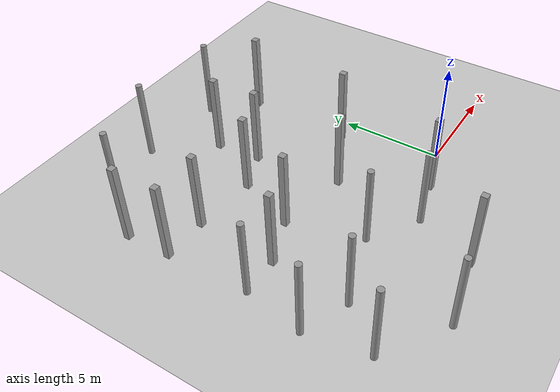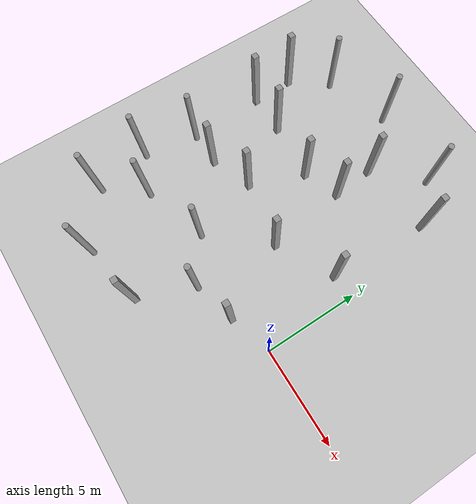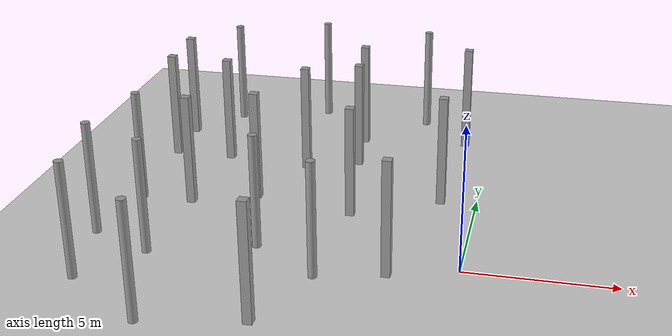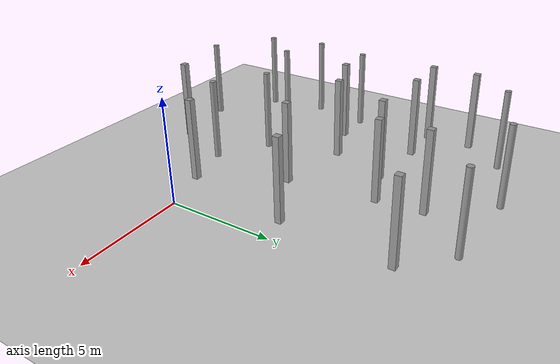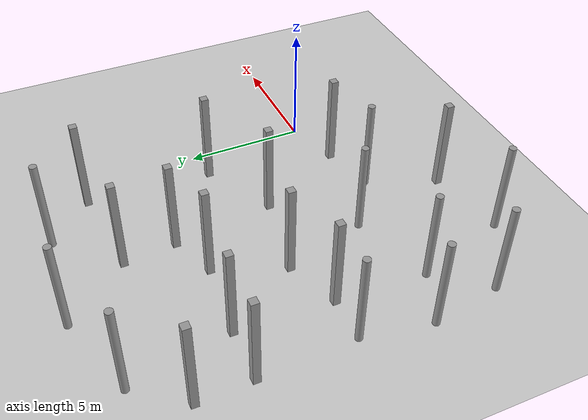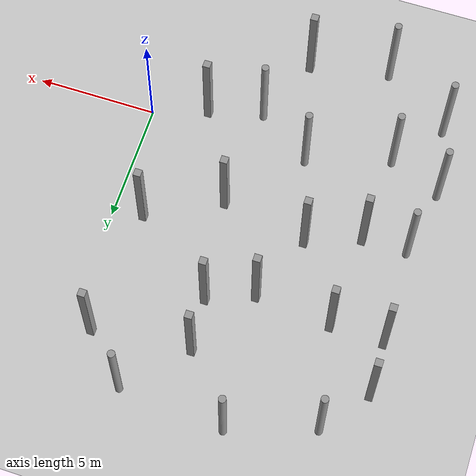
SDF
<sdf version="1.6">
 <world name="default">
  <model name="ground_plane">
   <static>1</static>
   <link name="link">
    <collision name="collision">
     <geometry><plane><normal>0 0 1</normal><size>100 100</size></plane></geometry>
    </collision>
    <visual name="visual">
     <cast_shadows>0</cast_shadows>
     <geometry><plane><normal>0 0 1</normal><size>100 100</size></plane></geometry>
     <material>
      <script><uri>file://media/materials/scripts/gazebo.material</uri><name>Gazebo/Gray</name></script>
     </material>
    </visual>
   </link>
  </model>
  <model name="unit_box">
   <link name="link">
    <inertial>
     <mass>1000</mass>
     <inertia><ixx>166.667</ixx><ixy>0</ixy><ixz>0</ixz><iyy>166.667</iyy><iyz>0</iyz><izz>166.667</izz></inertia>
    </inertial>
    <visual name="visual">
     <geometry><box><size>0.3 0.3 4</size></box></geometry>
     <material>
      <script><name>Gazebo/Grey</name><uri>file://media/materials/scripts/gazebo.material</uri></script>
      <shader type="vertex"><normal_map>__default__</normal_map></shader>
      <ambient>0.3 0.3 0.3 1</ambient>
      <diffuse>0.7 0.7 0.7 1</diffuse>
      <specular>0.01 0.01 0.01 1</specular>
      <emissive>0 0 0 1</emissive>
     </material>
    </visual>
    <collision name="collision">
     <geometry><box><size>0.3 0.3 4</size></box></geometry>
     <surface>
      <friction>
       <ode><mu>1</mu><mu2>1</mu2><fdir1>0 0 0</fdir1><slip1>0</slip1><slip2>0</slip2></ode>
       <torsional>
        <coefficient>1</coefficient>
        <patch_radius>0</patch_radius>
        <surface_radius>0</surface_radius>
        <use_patch_radius>1</use_patch_radius>
        <ode><slip>0</slip></ode>
       </torsional>
      </friction>
      <bounce><restitution_coefficient>0</restitution_coefficient><threshold>1e+06</threshold></bounce>
      <contact>
       <collide_without_contact>0</collide_without_contact>
       <collide_without_contact_bitmask>1</collide_without_contact_bitmask>
       <collide_bitmask>1</collide_bitmask>
       <ode>
        <soft_cfm>0</soft_cfm>
        <soft_erp>0.2</soft_erp>
        <kp>1e+13</kp>
        <kd>1</kd>
        <max_vel>0.01</max_vel>
        <min_depth>0</min_depth>
       </ode>
       <bullet>
        <split_impulse>1</split_impulse>
        <split_impulse_penetration_threshold>-0.01</split_impulse_penetration_threshold>
        <soft_cfm>0</soft_cfm>
        <soft_erp>0.2</soft_erp>
        <kp>1e+13</kp>
        <kd>1</kd>
       </bullet>
      </contact>
     </surface>
    </collision>
   </link>
   <static>0</static>
   <pose>-1.26731 4.71521 2 1e-05 1e-06 -0.00411</pose>
  </model>
  <model name="unit_box_clone">
   <link name="link">
    <inertial>
     <mass>1000</mass>
     <inertia><ixx>166.667</ixx><ixy>0</ixy><ixz>0</ixz><iyy>166.667</iyy><iyz>0</iyz><izz>166.667</izz></inertia>
    </inertial>
    <visual name="visual">
     <geometry><box><size>0.3 0.3 4</size></box></geometry>
     <material>
      <script><name>Gazebo/Grey</name><uri>file://media/materials/scripts/gazebo.material</uri></script>
      <shader type="vertex"><normal_map>__default__</normal_map></shader>
      <ambient>0.3 0.3 0.3 1</ambient>
      <diffuse>0.7 0.7 0.7 1</diffuse>
      <specular>0.01 0.01 0.01 1</specular>
      <emissive>0 0 0 1</emissive>
     </material>
    </visual>
    <collision name="collision">
     <geometry><box><size>0.3 0.3 4</size></box></geometry>
     <surface>
      <friction>
       <ode><mu>1</mu><mu2>1</mu2><fdir1>0 0 0</fdir1><slip1>0</slip1><slip2>0</slip2></ode>
       <torsional>
        <coefficient>1</coefficient>
        <patch_radius>0</patch_radius>
        <surface_radius>0</surface_radius>
        <use_patch_radius>1</use_patch_radius>
        <ode><slip>0</slip></ode>
       </torsional>
      </friction>
      <bounce><restitution_coefficient>0</restitution_coefficient><threshold>1e+06</threshold></bounce>
      <contact>
       <collide_without_contact>0</collide_without_contact>
       <collide_without_contact_bitmask>1</collide_without_contact_bitmask>
       <collide_bitmask>1</collide_bitmask>
       <ode>
        <soft_cfm>0</soft_cfm>
        <soft_erp>0.2</soft_erp>
        <kp>1e+13</kp>
        <kd>1</kd>
        <max_vel>0.01</max_vel>
        <min_depth>0</min_depth>
       </ode>
       <bullet>
        <split_impulse>1</split_impulse>
        <split_impulse_penetration_threshold>-0.01</split_impulse_penetration_threshold>
        <soft_cfm>0</soft_cfm>
        <soft_erp>0.2</soft_erp>
        <kp>1e+13</kp>
        <kd>1</kd>
       </bullet>
      </contact>
     </surface>
    </collision>
   </link>
   <static>0</static>
   <pose>-2.25021 -0.681029 2 1e-06 -4e-06 -0.005446</pose>
  </model>
  <model name="unit_box_clone_3">
   <link name="link">
    <inertial>
     <mass>1000</mass>
     <inertia><ixx>166.667</ixx><ixy>0</ixy><ixz>0</ixz><iyy>166.667</iyy><iyz>0</iyz><izz>166.667</izz></inertia>
    </inertial>
    <visual name="visual">
     <geometry><box><size>0.3 0.3 4</size></box></geometry>
     <material>
      <script><name>Gazebo/Grey</name><uri>file://media/materials/scripts/gazebo.material</uri></script>
      <shader type="vertex"><normal_map>__default__</normal_map></shader>
      <ambient>0.3 0.3 0.3 1</ambient>
      <diffuse>0.7 0.7 0.7 1</diffuse>
      <specular>0.01 0.01 0.01 1</specular>
      <emissive>0 0 0 1</emissive>
     </material>
    </visual>
    <collision name="collision">
     <geometry><box><size>0.3 0.3 4</size></box></geometry>
     <surface>
      <friction>
       <ode><mu>1</mu><mu2>1</mu2><fdir1>0 0 0</fdir1><slip1>0</slip1><slip2>0</slip2></ode>
       <torsional>
        <coefficient>1</coefficient>
        <patch_radius>0</patch_radius>
        <surface_radius>0</surface_radius>
        <use_patch_radius>1</use_patch_radius>
        <ode><slip>0</slip></ode>
       </torsional>
      </friction>
      <bounce><restitution_coefficient>0</restitution_coefficient><threshold>1e+06</threshold></bounce>
      <contact>
       <collide_without_contact>0</collide_without_contact>
       <collide_without_contact_bitmask>1</collide_without_contact_bitmask>
       <collide_bitmask>1</collide_bitmask>
       <ode>
        <soft_cfm>0</soft_cfm>
        <soft_erp>0.2</soft_erp>
        <kp>1e+13</kp>
        <kd>1</kd>
        <max_vel>0.01</max_vel>
        <min_depth>0</min_depth>
       </ode>
       <bullet>
        <split_impulse>1</split_impulse>
        <split_impulse_penetration_threshold>-0.01</split_impulse_penetration_threshold>
        <soft_cfm>0</soft_cfm>
        <soft_erp>0.2</soft_erp>
        <kp>1e+13</kp>
        <kd>1</kd>
       </bullet>
      </contact>
     </surface>
    </collision>
   </link>
   <static>0</static>
   <pose>-9.81581 6.97361 2 5e-06 1e-06 -0.004296</pose>
  </model>
  <model name="unit_box_clone_4">
   <link name="link">
    <inertial>
     <mass>1000</mass>
     <inertia><ixx>166.667</ixx><ixy>0</ixy><ixz>0</ixz><iyy>166.667</iyy><iyz>0</iyz><izz>166.667</izz></inertia>
    </inertial>
    <visual name="visual">
     <geometry><box><size>0.3 0.3 4</size></box></geometry>
     <material>
      <script><name>Gazebo/Grey</name><uri>file://media/materials/scripts/gazebo.material</uri></script>
      <shader type="vertex"><normal_map>__default__</normal_map></shader>
      <ambient>0.3 0.3 0.3 1</ambient>
      <diffuse>0.7 0.7 0.7 1</diffuse>
      <specular>0.01 0.01 0.01 1</specular>
      <emissive>0 0 0 1</emissive>
     </material>
    </visual>
    <collision name="collision">
     <geometry><box><size>0.3 0.3 4</size></box></geometry>
     <surface>
      <friction>
       <ode><mu>1</mu><mu2>1</mu2><fdir1>0 0 0</fdir1><slip1>0</slip1><slip2>0</slip2></ode>
       <torsional>
        <coefficient>1</coefficient>
        <patch_radius>0</patch_radius>
        <surface_radius>0</surface_radius>
        <use_patch_radius>1</use_patch_radius>
        <ode><slip>0</slip></ode>
       </torsional>
      </friction>
      <bounce><restitution_coefficient>0</restitution_coefficient><threshold>1e+06</threshold></bounce>
      <contact>
       <collide_without_contact>0</collide_without_contact>
       <collide_without_contact_bitmask>1</collide_without_contact_bitmask>
       <collide_bitmask>1</collide_bitmask>
       <ode>
        <soft_cfm>0</soft_cfm>
        <soft_erp>0.2</soft_erp>
        <kp>1e+13</kp>
        <kd>1</kd>
        <max_vel>0.01</max_vel>
        <min_depth>0</min_depth>
       </ode>
       <bullet>
        <split_impulse>1</split_impulse>
        <split_impulse_penetration_threshold>-0.01</split_impulse_penetration_threshold>
        <soft_cfm>0</soft_cfm>
        <soft_erp>0.2</soft_erp>
        <kp>1e+13</kp>
        <kd>1</kd>
       </bullet>
      </contact>
     </surface>
    </collision>
   </link>
   <static>0</static>
   <pose>-12.064 9.20919 2 -8e-06 2e-06 -0.002625</pose>
  </model>
  <model name="unit_box_clone_8">
   <link name="link">
    <inertial>
     <mass>1000</mass>
     <inertia><ixx>166.667</ixx><ixy>0</ixy><ixz>0</ixz><iyy>166.667</iyy><iyz>0</iyz><izz>166.667</izz></inertia>
    </inertial>
    <visual name="visual">
     <geometry><box><size>0.3 0.3 4</size></box></geometry>
     <material>
      <script><name>Gazebo/Grey</name><uri>file://media/materials/scripts/gazebo.material</uri></script>
      <shader type="vertex"><normal_map>__default__</normal_map></shader>
      <ambient>0.3 0.3 0.3 1</ambient>
      <diffuse>0.7 0.7 0.7 1</diffuse>
      <specular>0.01 0.01 0.01 1</specular>
      <emissive>0 0 0 1</emissive>
     </material>
    </visual>
    <collision name="collision">
     <geometry><box><size>0.3 0.3 4</size></box></geometry>
     <surface>
      <friction>
       <ode><mu>1</mu><mu2>1</mu2><fdir1>0 0 0</fdir1><slip1>0</slip1><slip2>0</slip2></ode>
       <torsional>
        <coefficient>1</coefficient>
        <patch_radius>0</patch_radius>
        <surface_radius>0</surface_radius>
        <use_patch_radius>1</use_patch_radius>
        <ode><slip>0</slip></ode>
       </torsional>
      </friction>
      <bounce><restitution_coefficient>0</restitution_coefficient><threshold>1e+06</threshold></bounce>
      <contact>
       <collide_without_contact>0</collide_without_contact>
       <collide_without_contact_bitmask>1</collide_without_contact_bitmask>
       <collide_bitmask>1</collide_bitmask>
       <ode>
        <soft_cfm>0</soft_cfm>
        <soft_erp>0.2</soft_erp>
        <kp>1e+13</kp>
        <kd>1</kd>
        <max_vel>0.01</max_vel>
        <min_depth>0</min_depth>
       </ode>
       <bullet>
        <split_impulse>1</split_impulse>
        <split_impulse_penetration_threshold>-0.01</split_impulse_penetration_threshold>
        <soft_cfm>0</soft_cfm>
        <soft_erp>0.2</soft_erp>
        <kp>1e+13</kp>
        <kd>1</kd>
       </bullet>
      </contact>
     </surface>
    </collision>
   </link>
   <static>0</static>
   <pose>-6.68885 6.67572 2 -3e-06 2.3e-05 0.003441</pose>
  </model>
  <model name="unit_box_clone_13">
   <link name="link">
    <inertial>
     <mass>1000</mass>
     <inertia><ixx>166.667</ixx><ixy>0</ixy><ixz>0</ixz><iyy>166.667</iyy><iyz>0</iyz><izz>166.667</izz></inertia>
    </inertial>
    <visual name="visual">
     <geometry><box><size>0.3 0.3 4</size></box></geometry>
     <material>
      <script><name>Gazebo/Grey</name><uri>file://media/materials/scripts/gazebo.material</uri></script>
      <shader type="vertex"><normal_map>__default__</normal_map></shader>
      <ambient>0.3 0.3 0.3 1</ambient>
      <diffuse>0.7 0.7 0.7 1</diffuse>
      <specular>0.01 0.01 0.01 1</specular>
      <emissive>0 0 0 1</emissive>
     </material>
    </visual>
    <collision name="collision">
     <geometry><box><size>0.3 0.3 4</size></box></geometry>
     <surface>
      <friction>
       <ode><mu>1</mu><mu2>1</mu2><fdir1>0 0 0</fdir1><slip1>0</slip1><slip2>0</slip2></ode>
       <torsional>
        <coefficient>1</coefficient>
        <patch_radius>0</patch_radius>
        <surface_radius>0</surface_radius>
        <use_patch_radius>1</use_patch_radius>
        <ode><slip>0</slip></ode>
       </torsional>
      </friction>
      <bounce><restitution_coefficient>0</restitution_coefficient><threshold>1e+06</threshold></bounce>
      <contact>
       <collide_without_contact>0</collide_without_contact>
       <collide_without_contact_bitmask>1</collide_without_contact_bitmask>
       <collide_bitmask>1</collide_bitmask>
       <ode>
        <soft_cfm>0</soft_cfm>
        <soft_erp>0.2</soft_erp>
        <kp>1e+13</kp>
        <kd>1</kd>
        <max_vel>0.01</max_vel>
        <min_depth>0</min_depth>
       </ode>
       <bullet>
        <split_impulse>1</split_impulse>
        <split_impulse_penetration_threshold>-0.01</split_impulse_penetration_threshold>
        <soft_cfm>0</soft_cfm>
        <soft_erp>0.2</soft_erp>
        <kp>1e+13</kp>
        <kd>1</kd>
       </bullet>
      </contact>
     </surface>
    </collision>
   </link>
   <static>0</static>
   <pose>-10.0001 3.00009 2 -7e-06 2e-06 -0.000104</pose>
  </model>
  <model name="unit_box_clone_14">
   <link name="link">
    <inertial>
     <mass>1000</mass>
     <inertia><ixx>166.667</ixx><ixy>0</ixy><ixz>0</ixz><iyy>166.667</iyy><iyz>0</iyz><izz>166.667</izz></inertia>
    </inertial>
    <visual name="visual">
     <geometry><box><size>0.3 0.3 4</size></box></geometry>
     <material>
      <script><name>Gazebo/Grey</name><uri>file://media/materials/scripts/gazebo.material</uri></script>
      <shader type="vertex"><normal_map>__default__</normal_map></shader>
      <ambient>0.3 0.3 0.3 1</ambient>
      <diffuse>0.7 0.7 0.7 1</diffuse>
      <specular>0.01 0.01 0.01 1</specular>
      <emissive>0 0 0 1</emissive>
     </material>
    </visual>
    <collision name="collision">
     <geometry><box><size>0.3 0.3 4</size></box></geometry>
     <surface>
      <friction>
       <ode><mu>1</mu><mu2>1</mu2><fdir1>0 0 0</fdir1><slip1>0</slip1><slip2>0</slip2></ode>
       <torsional>
        <coefficient>1</coefficient>
        <patch_radius>0</patch_radius>
        <surface_radius>0</surface_radius>
        <use_patch_radius>1</use_patch_radius>
        <ode><slip>0</slip></ode>
       </torsional>
      </friction>
      <bounce><restitution_coefficient>0</restitution_coefficient><threshold>1e+06</threshold></bounce>
      <contact>
       <collide_without_contact>0</collide_without_contact>
       <collide_without_contact_bitmask>1</collide_without_contact_bitmask>
       <collide_bitmask>1</collide_bitmask>
       <ode>
        <soft_cfm>0</soft_cfm>
        <soft_erp>0.2</soft_erp>
        <kp>1e+13</kp>
        <kd>1</kd>
        <max_vel>0.01</max_vel>
        <min_depth>0</min_depth>
       </ode>
       <bullet>
        <split_impulse>1</split_impulse>
        <split_impulse_penetration_threshold>-0.01</split_impulse_penetration_threshold>
        <soft_cfm>0</soft_cfm>
        <soft_erp>0.2</soft_erp>
        <kp>1e+13</kp>
        <kd>1</kd>
       </bullet>
      </contact>
     </surface>
    </collision>
   </link>
   <static>0</static>
   <pose>-11.9999 7.00011 2 -0 -1e-06 0.000133</pose>
  </model>
  <model name="unit_box_clone_22">
   <link name="link">
    <inertial>
     <mass>1000</mass>
     <inertia><ixx>166.667</ixx><ixy>0</ixy><ixz>0</ixz><iyy>166.667</iyy><iyz>0</iyz><izz>166.667</izz></inertia>
    </inertial>
    <visual name="visual">
     <geometry><box><size>0.3 0.3 4</size></box></geometry>
     <material>
      <script><name>Gazebo/Grey</name><uri>file://media/materials/scripts/gazebo.material</uri></script>
      <shader type="vertex"><normal_map>__default__</normal_map></shader>
      <ambient>0.3 0.3 0.3 1</ambient>
      <diffuse>0.7 0.7 0.7 1</diffuse>
      <specular>0.01 0.01 0.01 1</specular>
      <emissive>0 0 0 1</emissive>
     </material>
    </visual>
    <collision name="collision">
     <geometry><box><size>0.3 0.3 4</size></box></geometry>
     <surface>
      <friction>
       <ode><mu>1</mu><mu2>1</mu2><fdir1>0 0 0</fdir1><slip1>0</slip1><slip2>0</slip2></ode>
       <torsional>
        <coefficient>1</coefficient>
        <patch_radius>0</patch_radius>
        <surface_radius>0</surface_radius>
        <use_patch_radius>1</use_patch_radius>
        <ode><slip>0</slip></ode>
       </torsional>
      </friction>
      <bounce><restitution_coefficient>0</restitution_coefficient><threshold>1e+06</threshold></bounce>
      <contact>
       <collide_without_contact>0</collide_without_contact>
       <collide_without_contact_bitmask>1</collide_without_contact_bitmask>
       <collide_bitmask>1</collide_bitmask>
       <ode>
        <soft_cfm>0</soft_cfm>
        <soft_erp>0.2</soft_erp>
        <kp>1e+13</kp>
        <kd>1</kd>
        <max_vel>0.01</max_vel>
        <min_depth>0</min_depth>
       </ode>
       <bullet>
        <split_impulse>1</split_impulse>
        <split_impulse_penetration_threshold>-0.01</split_impulse_penetration_threshold>
        <soft_cfm>0</soft_cfm>
        <soft_erp>0.2</soft_erp>
        <kp>1e+13</kp>
        <kd>1</kd>
       </bullet>
      </contact>
     </surface>
    </collision>
   </link>
   <static>0</static>
   <pose>-0.999877 9.99992 2 1.3e-05 -4e-06 -0.007695</pose>
  </model>
  <model name="unit_box_clone_23">
   <link name="link">
    <inertial>
     <mass>1000</mass>
     <inertia><ixx>166.667</ixx><ixy>0</ixy><ixz>0</ixz><iyy>166.667</iyy><iyz>0</iyz><izz>166.667</izz></inertia>
    </inertial>
    <visual name="visual">
     <geometry><box><size>0.3 0.3 4</size></box></geometry>
     <material>
      <script><name>Gazebo/Grey</name><uri>file://media/materials/scripts/gazebo.material</uri></script>
      <shader type="vertex"><normal_map>__default__</normal_map></shader>
      <ambient>0.3 0.3 0.3 1</ambient>
      <diffuse>0.7 0.7 0.7 1</diffuse>
      <specular>0.01 0.01 0.01 1</specular>
      <emissive>0 0 0 1</emissive>
     </material>
    </visual>
    <collision name="collision">
     <geometry><box><size>0.3 0.3 4</size></box></geometry>
     <surface>
      <friction>
       <ode><mu>1</mu><mu2>1</mu2><fdir1>0 0 0</fdir1><slip1>0</slip1><slip2>0</slip2></ode>
       <torsional>
        <coefficient>1</coefficient>
        <patch_radius>0</patch_radius>
        <surface_radius>0</surface_radius>
        <use_patch_radius>1</use_patch_radius>
        <ode><slip>0</slip></ode>
       </torsional>
      </friction>
      <bounce><restitution_coefficient>0</restitution_coefficient><threshold>1e+06</threshold></bounce>
      <contact>
       <collide_without_contact>0</collide_without_contact>
       <collide_without_contact_bitmask>1</collide_without_contact_bitmask>
       <collide_bitmask>1</collide_bitmask>
       <ode>
        <soft_cfm>0</soft_cfm>
        <soft_erp>0.2</soft_erp>
        <kp>1e+13</kp>
        <kd>1</kd>
        <max_vel>0.01</max_vel>
        <min_depth>0</min_depth>
       </ode>
       <bullet>
        <split_impulse>1</split_impulse>
        <split_impulse_penetration_threshold>-0.01</split_impulse_penetration_threshold>
        <soft_cfm>0</soft_cfm>
        <soft_erp>0.2</soft_erp>
        <kp>1e+13</kp>
        <kd>1</kd>
       </bullet>
      </contact>
     </surface>
    </collision>
   </link>
   <static>0</static>
   <pose>-5.00228 9.5919 2 0 -0 0.000109</pose>
  </model>
  <model name="unit_box_clone_24">
   <link name="link">
    <inertial>
     <mass>1000</mass>
     <inertia><ixx>166.667</ixx><ixy>0</ixy><ixz>0</ixz><iyy>166.667</iyy><iyz>0</iyz><izz>166.667</izz></inertia>
    </inertial>
    <visual name="visual">
     <geometry><box><size>0.3 0.3 4</size></box></geometry>
     <material>
      <script><name>Gazebo/Grey</name><uri>file://media/materials/scripts/gazebo.material</uri></script>
      <shader type="vertex"><normal_map>__default__</normal_map></shader>
      <ambient>0.3 0.3 0.3 1</ambient>
      <diffuse>0.7 0.7 0.7 1</diffuse>
      <specular>0.01 0.01 0.01 1</specular>
      <emissive>0 0 0 1</emissive>
     </material>
    </visual>
    <collision name="collision">
     <geometry><box><size>0.3 0.3 4</size></box></geometry>
     <surface>
      <friction>
       <ode><mu>1</mu><mu2>1</mu2><fdir1>0 0 0</fdir1><slip1>0</slip1><slip2>0</slip2></ode>
       <torsional>
        <coefficient>1</coefficient>
        <patch_radius>0</patch_radius>
        <surface_radius>0</surface_radius>
        <use_patch_radius>1</use_patch_radius>
        <ode><slip>0</slip></ode>
       </torsional>
      </friction>
      <bounce><restitution_coefficient>0</restitution_coefficient><threshold>1e+06</threshold></bounce>
      <contact>
       <collide_without_contact>0</collide_without_contact>
       <collide_without_contact_bitmask>1</collide_without_contact_bitmask>
       <collide_bitmask>1</collide_bitmask>
       <ode>
        <soft_cfm>0</soft_cfm>
        <soft_erp>0.2</soft_erp>
        <kp>1e+13</kp>
        <kd>1</kd>
        <max_vel>0.01</max_vel>
        <min_depth>0</min_depth>
       </ode>
       <bullet>
        <split_impulse>1</split_impulse>
        <split_impulse_penetration_threshold>-0.01</split_impulse_penetration_threshold>
        <soft_cfm>0</soft_cfm>
        <soft_erp>0.2</soft_erp>
        <kp>1e+13</kp>
        <kd>1</kd>
       </bullet>
      </contact>
     </surface>
    </collision>
   </link>
   <static>0</static>
   <pose>-4.80941 7.40664 2 1e-06 1e-06 0.002489</pose>
  </model>
  <model name="unit_box_clone_28">
   <link name="link">
    <inertial>
     <mass>1000</mass>
     <inertia><ixx>166.667</ixx><ixy>0</ixy><ixz>0</ixz><iyy>166.667</iyy><iyz>0</iyz><izz>166.667</izz></inertia>
    </inertial>
    <visual name="visual">
     <geometry><box><size>0.3 0.3 4</size></box></geometry>
     <material>
      <script><name>Gazebo/Grey</name><uri>file://media/materials/scripts/gazebo.material</uri></script>
      <shader type="vertex"><normal_map>__default__</normal_map></shader>
      <ambient>0.3 0.3 0.3 1</ambient>
      <diffuse>0.7 0.7 0.7 1</diffuse>
      <specular>0.01 0.01 0.01 1</specular>
      <emissive>0 0 0 1</emissive>
     </material>
    </visual>
    <collision name="collision">
     <geometry><box><size>0.3 0.3 4</size></box></geometry>
     <surface>
      <friction>
       <ode><mu>1</mu><mu2>1</mu2><fdir1>0 0 0</fdir1><slip1>0</slip1><slip2>0</slip2></ode>
       <torsional>
        <coefficient>1</coefficient>
        <patch_radius>0</patch_radius>
        <surface_radius>0</surface_radius>
        <use_patch_radius>1</use_patch_radius>
        <ode><slip>0</slip></ode>
       </torsional>
      </friction>
      <bounce><restitution_coefficient>0</restitution_coefficient><threshold>1e+06</threshold></bounce>
      <contact>
       <collide_without_contact>0</collide_without_contact>
       <collide_without_contact_bitmask>1</collide_without_contact_bitmask>
       <collide_bitmask>1</collide_bitmask>
       <ode>
        <soft_cfm>0</soft_cfm>
        <soft_erp>0.2</soft_erp>
        <kp>1e+13</kp>
        <kd>1</kd>
        <max_vel>0.01</max_vel>
        <min_depth>0</min_depth>
       </ode>
       <bullet>
        <split_impulse>1</split_impulse>
        <split_impulse_penetration_threshold>-0.01</split_impulse_penetration_threshold>
        <soft_cfm>0</soft_cfm>
        <soft_erp>0.2</soft_erp>
        <kp>1e+13</kp>
        <kd>1</kd>
       </bullet>
      </contact>
     </surface>
    </collision>
   </link>
   <static>0</static>
   <pose>-7.80118 3.82479 2 1e-06 -1e-06 -0.004584</pose>
  </model>
  <model name="unit_cylinder_clone_1_clone_1">
   <link name="link">
    <inertial>
     <mass>1000</mass>
     <inertia><ixx>145.833</ixx><ixy>0</ixy><ixz>0</ixz><iyy>145.833</iyy><iyz>0</iyz><izz>125</izz></inertia>
    </inertial>
    <visual name="visual">
     <geometry><cylinder><radius>0.15</radius><length>4</length></cylinder></geometry>
     <material>
      <script><name>Gazebo/Grey</name><uri>file://media/materials/scripts/gazebo.material</uri></script>
      <shader type="vertex"><normal_map>__default__</normal_map></shader>
      <ambient>0.3 0.3 0.3 1</ambient>
      <diffuse>0.7 0.7 0.7 1</diffuse>
      <specular>0.01 0.01 0.01 1</specular>
      <emissive>0 0 0 1</emissive>
     </material>
    </visual>
    <collision name="collision">
     <geometry><cylinder><radius>0.15</radius><length>4</length></cylinder></geometry>
     <surface>
      <friction>
       <ode><mu>1</mu><mu2>1</mu2><fdir1>0 0 0</fdir1><slip1>0</slip1><slip2>0</slip2></ode>
       <torsional>
        <coefficient>1</coefficient>
        <patch_radius>0</patch_radius>
        <surface_radius>0</surface_radius>
        <use_patch_radius>1</use_patch_radius>
        <ode><slip>0</slip></ode>
       </torsional>
      </friction>
      <bounce><restitution_coefficient>0</restitution_coefficient><threshold>1e+06</threshold></bounce>
      <contact>
       <collide_without_contact>0</collide_without_contact>
       <collide_without_contact_bitmask>1</collide_without_contact_bitmask>
       <collide_bitmask>1</collide_bitmask>
       <ode>
        <soft_cfm>0</soft_cfm>
        <soft_erp>0.2</soft_erp>
        <kp>1e+13</kp>
        <kd>1</kd>
        <max_vel>0.01</max_vel>
        <min_depth>0</min_depth>
       </ode>
       <bullet>
        <split_impulse>1</split_impulse>
        <split_impulse_penetration_threshold>-0.01</split_impulse_penetration_threshold>
        <soft_cfm>0</soft_cfm>
        <soft_erp>0.2</soft_erp>
        <kp>1e+13</kp>
        <kd>1</kd>
       </bullet>
      </contact>
     </surface>
    </collision>
   </link>
   <static>0</static>
   <pose>-11.8335 -2.8104 1.99995 -0.000271 -2.9e-05 -0.902102</pose>
  </model>
  <model name="unit_cylinder_clone_1_clone_4">
   <link name="link">
    <inertial>
     <mass>1000</mass>
     <inertia><ixx>145.833</ixx><ixy>0</ixy><ixz>0</ixz><iyy>145.833</iyy><iyz>0</iyz><izz>125</izz></inertia>
    </inertial>
    <visual name="visual">
     <geometry><cylinder><radius>0.15</radius><length>4</length></cylinder></geometry>
     <material>
      <script><name>Gazebo/Grey</name><uri>file://media/materials/scripts/gazebo.material</uri></script>
      <shader type="vertex"><normal_map>__default__</normal_map></shader>
      <ambient>0.3 0.3 0.3 1</ambient>
      <diffuse>0.7 0.7 0.7 1</diffuse>
      <specular>0.01 0.01 0.01 1</specular>
      <emissive>0 0 0 1</emissive>
     </material>
    </visual>
    <collision name="collision">
     <geometry><cylinder><radius>0.15</radius><length>4</length></cylinder></geometry>
     <surface>
      <friction>
       <ode><mu>1</mu><mu2>1</mu2><fdir1>0 0 0</fdir1><slip1>0</slip1><slip2>0</slip2></ode>
       <torsional>
        <coefficient>1</coefficient>
        <patch_radius>0</patch_radius>
        <surface_radius>0</surface_radius>
        <use_patch_radius>1</use_patch_radius>
        <ode><slip>0</slip></ode>
       </torsional>
      </friction>
      <bounce><restitution_coefficient>0</restitution_coefficient><threshold>1e+06</threshold></bounce>
      <contact>
       <collide_without_contact>0</collide_without_contact>
       <collide_without_contact_bitmask>1</collide_without_contact_bitmask>
       <collide_bitmask>1</collide_bitmask>
       <ode>
        <soft_cfm>0</soft_cfm>
        <soft_erp>0.2</soft_erp>
        <kp>1e+13</kp>
        <kd>1</kd>
        <max_vel>0.01</max_vel>
        <min_depth>0</min_depth>
       </ode>
       <bullet>
        <split_impulse>1</split_impulse>
        <split_impulse_penetration_threshold>-0.01</split_impulse_penetration_threshold>
        <soft_cfm>0</soft_cfm>
        <soft_erp>0.2</soft_erp>
        <kp>1e+13</kp>
        <kd>1</kd>
       </bullet>
      </contact>
     </surface>
    </collision>
   </link>
   <static>0</static>
   <pose>-8.98905 -4.76141 1.99995 -0.000271 -3e-05 -0.904065</pose>
  </model>
  <model name="unit_cylinder_clone_1_clone_11">
   <link name="link">
    <inertial>
     <mass>1000</mass>
     <inertia><ixx>145.833</ixx><ixy>0</ixy><ixz>0</ixz><iyy>145.833</iyy><iyz>0</iyz><izz>125</izz></inertia>
    </inertial>
    <visual name="visual">
     <geometry><cylinder><radius>0.15</radius><length>4</length></cylinder></geometry>
     <material>
      <script><name>Gazebo/Grey</name><uri>file://media/materials/scripts/gazebo.material</uri></script>
      <shader type="vertex"><normal_map>__default__</normal_map></shader>
      <ambient>0.3 0.3 0.3 1</ambient>
      <diffuse>0.7 0.7 0.7 1</diffuse>
      <specular>0.01 0.01 0.01 1</specular>
      <emissive>0 0 0 1</emissive>
     </material>
    </visual>
    <collision name="collision">
     <geometry><cylinder><radius>0.15</radius><length>4</length></cylinder></geometry>
     <surface>
      <friction>
       <ode><mu>1</mu><mu2>1</mu2><fdir1>0 0 0</fdir1><slip1>0</slip1><slip2>0</slip2></ode>
       <torsional>
        <coefficient>1</coefficient>
        <patch_radius>0</patch_radius>
        <surface_radius>0</surface_radius>
        <use_patch_radius>1</use_patch_radius>
        <ode><slip>0</slip></ode>
       </torsional>
      </friction>
      <bounce><restitution_coefficient>0</restitution_coefficient><threshold>1e+06</threshold></bounce>
      <contact>
       <collide_without_contact>0</collide_without_contact>
       <collide_without_contact_bitmask>1</collide_without_contact_bitmask>
       <collide_bitmask>1</collide_bitmask>
       <ode>
        <soft_cfm>0</soft_cfm>
        <soft_erp>0.2</soft_erp>
        <kp>1e+13</kp>
        <kd>1</kd>
        <max_vel>0.01</max_vel>
        <min_depth>0</min_depth>
       </ode>
       <bullet>
        <split_impulse>1</split_impulse>
        <split_impulse_penetration_threshold>-0.01</split_impulse_penetration_threshold>
        <soft_cfm>0</soft_cfm>
        <soft_erp>0.2</soft_erp>
        <kp>1e+13</kp>
        <kd>1</kd>
       </bullet>
      </contact>
     </surface>
    </collision>
   </link>
   <static>0</static>
   <pose>-4.49211 -1.24162 1.99995 -0.000271 -2.8e-05 -0.896025</pose>
  </model>
  <model name="unit_cylinder_clone_1_clone_12">
   <link name="link">
    <inertial>
     <mass>1000</mass>
     <inertia><ixx>145.833</ixx><ixy>0</ixy><ixz>0</ixz><iyy>145.833</iyy><iyz>0</iyz><izz>125</izz></inertia>
    </inertial>
    <visual name="visual">
     <geometry><cylinder><radius>0.15</radius><length>4</length></cylinder></geometry>
     <material>
      <script><name>Gazebo/Grey</name><uri>file://media/materials/scripts/gazebo.material</uri></script>
      <shader type="vertex"><normal_map>__default__</normal_map></shader>
      <ambient>0.3 0.3 0.3 1</ambient>
      <diffuse>0.7 0.7 0.7 1</diffuse>
      <specular>0.01 0.01 0.01 1</specular>
      <emissive>0 0 0 1</emissive>
     </material>
    </visual>
    <collision name="collision">
     <geometry><cylinder><radius>0.15</radius><length>4</length></cylinder></geometry>
     <surface>
      <friction>
       <ode><mu>1</mu><mu2>1</mu2><fdir1>0 0 0</fdir1><slip1>0</slip1><slip2>0</slip2></ode>
       <torsional>
        <coefficient>1</coefficient>
        <patch_radius>0</patch_radius>
        <surface_radius>0</surface_radius>
        <use_patch_radius>1</use_patch_radius>
        <ode><slip>0</slip></ode>
       </torsional>
      </friction>
      <bounce><restitution_coefficient>0</restitution_coefficient><threshold>1e+06</threshold></bounce>
      <contact>
       <collide_without_contact>0</collide_without_contact>
       <collide_without_contact_bitmask>1</collide_without_contact_bitmask>
       <collide_bitmask>1</collide_bitmask>
       <ode>
        <soft_cfm>0</soft_cfm>
        <soft_erp>0.2</soft_erp>
        <kp>1e+13</kp>
        <kd>1</kd>
        <max_vel>0.01</max_vel>
        <min_depth>0</min_depth>
       </ode>
       <bullet>
        <split_impulse>1</split_impulse>
        <split_impulse_penetration_threshold>-0.01</split_impulse_penetration_threshold>
        <soft_cfm>0</soft_cfm>
        <soft_erp>0.2</soft_erp>
        <kp>1e+13</kp>
        <kd>1</kd>
       </bullet>
      </contact>
     </surface>
    </collision>
   </link>
   <static>0</static>
   <pose>-6.76449 0.284279 1.99995 -0.000271 -2.9e-05 -0.90102</pose>
  </model>
  <model name="unit_cylinder_clone_1_clone_14">
   <link name="link">
    <inertial>
     <mass>1000</mass>
     <inertia><ixx>145.833</ixx><ixy>0</ixy><ixz>0</ixz><iyy>145.833</iyy><iyz>0</iyz><izz>125</izz></inertia>
    </inertial>
    <visual name="visual">
     <geometry><cylinder><radius>0.15</radius><length>4</length></cylinder></geometry>
     <material>
      <script><name>Gazebo/Grey</name><uri>file://media/materials/scripts/gazebo.material</uri></script>
      <shader type="vertex"><normal_map>__default__</normal_map></shader>
      <ambient>0.3 0.3 0.3 1</ambient>
      <diffuse>0.7 0.7 0.7 1</diffuse>
      <specular>0.01 0.01 0.01 1</specular>
      <emissive>0 0 0 1</emissive>
     </material>
    </visual>
    <collision name="collision">
     <geometry><cylinder><radius>0.15</radius><length>4</length></cylinder></geometry>
     <surface>
      <friction>
       <ode><mu>1</mu><mu2>1</mu2><fdir1>0 0 0</fdir1><slip1>0</slip1><slip2>0</slip2></ode>
       <torsional>
        <coefficient>1</coefficient>
        <patch_radius>0</patch_radius>
        <surface_radius>0</surface_radius>
        <use_patch_radius>1</use_patch_radius>
        <ode><slip>0</slip></ode>
       </torsional>
      </friction>
      <bounce><restitution_coefficient>0</restitution_coefficient><threshold>1e+06</threshold></bounce>
      <contact>
       <collide_without_contact>0</collide_without_contact>
       <collide_without_contact_bitmask>1</collide_without_contact_bitmask>
       <collide_bitmask>1</collide_bitmask>
       <ode>
        <soft_cfm>0</soft_cfm>
        <soft_erp>0.2</soft_erp>
        <kp>1e+13</kp>
        <kd>1</kd>
        <max_vel>0.01</max_vel>
        <min_depth>0</min_depth>
       </ode>
       <bullet>
        <split_impulse>1</split_impulse>
        <split_impulse_penetration_threshold>-0.01</split_impulse_penetration_threshold>
        <soft_cfm>0</soft_cfm>
        <soft_erp>0.2</soft_erp>
        <kp>1e+13</kp>
        <kd>1</kd>
       </bullet>
      </contact>
     </surface>
    </collision>
   </link>
   <static>0</static>
   <pose>-10.1968 -0.793832 1.99995 -0.000271 -3e-05 -0.904055</pose>
  </model>
  <model name="unit_cylinder_clone_1_clone_7_clone_0">
   <link name="link">
    <inertial>
     <mass>1000</mass>
     <inertia><ixx>145.833</ixx><ixy>0</ixy><ixz>0</ixz><iyy>145.833</iyy><iyz>0</iyz><izz>125</izz></inertia>
    </inertial>
    <visual name="visual">
     <geometry><cylinder><radius>0.15</radius><length>4</length></cylinder></geometry>
     <material>
      <script><name>Gazebo/Grey</name><uri>file://media/materials/scripts/gazebo.material</uri></script>
      <shader type="vertex"><normal_map>__default__</normal_map></shader>
      <ambient>0.3 0.3 0.3 1</ambient>
      <diffuse>0.7 0.7 0.7 1</diffuse>
      <specular>0.01 0.01 0.01 1</specular>
      <emissive>0 0 0 1</emissive>
     </material>
    </visual>
    <collision name="collision">
     <geometry><cylinder><radius>0.15</radius><length>4</length></cylinder></geometry>
     <surface>
      <friction>
       <ode><mu>1</mu><mu2>1</mu2><fdir1>0 0 0</fdir1><slip1>0</slip1><slip2>0</slip2></ode>
       <torsional>
        <coefficient>1</coefficient>
        <patch_radius>0</patch_radius>
        <surface_radius>0</surface_radius>
        <use_patch_radius>1</use_patch_radius>
        <ode><slip>0</slip></ode>
       </torsional>
      </friction>
      <bounce><restitution_coefficient>0</restitution_coefficient><threshold>1e+06</threshold></bounce>
      <contact>
       <collide_without_contact>0</collide_without_contact>
       <collide_without_contact_bitmask>1</collide_without_contact_bitmask>
       <collide_bitmask>1</collide_bitmask>
       <ode>
        <soft_cfm>0</soft_cfm>
        <soft_erp>0.2</soft_erp>
        <kp>1e+13</kp>
        <kd>1</kd>
        <max_vel>0.01</max_vel>
        <min_depth>0</min_depth>
       </ode>
       <bullet>
        <split_impulse>1</split_impulse>
        <split_impulse_penetration_threshold>-0.01</split_impulse_penetration_threshold>
        <soft_cfm>0</soft_cfm>
        <soft_erp>0.2</soft_erp>
        <kp>1e+13</kp>
        <kd>1</kd>
       </bullet>
      </contact>
     </surface>
    </collision>
   </link>
   <static>0</static>
   <pose>-7.15575 12.2443 1.99995 -0.000271 -2.9e-05 -0.900883</pose>
  </model>
  <model name="unit_cylinder_clone_1_clone_7_clone_2">
   <link name="link">
    <inertial>
     <mass>1000</mass>
     <inertia><ixx>145.833</ixx><ixy>0</ixy><ixz>0</ixz><iyy>145.833</iyy><iyz>0</iyz><izz>125</izz></inertia>
    </inertial>
    <visual name="visual">
     <geometry><cylinder><radius>0.15</radius><length>4</length></cylinder></geometry>
     <material>
      <script><name>Gazebo/Grey</name><uri>file://media/materials/scripts/gazebo.material</uri></script>
      <shader type="vertex"><normal_map>__default__</normal_map></shader>
      <ambient>0.3 0.3 0.3 1</ambient>
      <diffuse>0.7 0.7 0.7 1</diffuse>
      <specular>0.01 0.01 0.01 1</specular>
      <emissive>0 0 0 1</emissive>
     </material>
    </visual>
    <collision name="collision">
     <geometry><cylinder><radius>0.15</radius><length>4</length></cylinder></geometry>
     <surface>
      <friction>
       <ode><mu>1</mu><mu2>1</mu2><fdir1>0 0 0</fdir1><slip1>0</slip1><slip2>0</slip2></ode>
       <torsional>
        <coefficient>1</coefficient>
        <patch_radius>0</patch_radius>
        <surface_radius>0</surface_radius>
        <use_patch_radius>1</use_patch_radius>
        <ode><slip>0</slip></ode>
       </torsional>
      </friction>
      <bounce><restitution_coefficient>0</restitution_coefficient><threshold>1e+06</threshold></bounce>
      <contact>
       <collide_without_contact>0</collide_without_contact>
       <collide_without_contact_bitmask>1</collide_without_contact_bitmask>
       <collide_bitmask>1</collide_bitmask>
       <ode>
        <soft_cfm>0</soft_cfm>
        <soft_erp>0.2</soft_erp>
        <kp>1e+13</kp>
        <kd>1</kd>
        <max_vel>0.01</max_vel>
        <min_depth>0</min_depth>
       </ode>
       <bullet>
        <split_impulse>1</split_impulse>
        <split_impulse_penetration_threshold>-0.01</split_impulse_penetration_threshold>
        <soft_cfm>0</soft_cfm>
        <soft_erp>0.2</soft_erp>
        <kp>1e+13</kp>
        <kd>1</kd>
       </bullet>
      </contact>
     </surface>
    </collision>
   </link>
   <static>0</static>
   <pose>-2.83448 11.8814 1.99995 -0.000271 -2.9e-05 -0.900883</pose>
  </model>
  <model name="unit_cylinder_clone_1_clone_7_clone_3">
   <link name="link">
    <inertial>
     <mass>1000</mass>
     <inertia><ixx>145.833</ixx><ixy>0</ixy><ixz>0</ixz><iyy>145.833</iyy><iyz>0</iyz><izz>125</izz></inertia>
    </inertial>
    <visual name="visual">
     <geometry><cylinder><radius>0.15</radius><length>4</length></cylinder></geometry>
     <material>
      <script><name>Gazebo/Grey</name><uri>file://media/materials/scripts/gazebo.material</uri></script>
      <shader type="vertex"><normal_map>__default__</normal_map></shader>
      <ambient>0.3 0.3 0.3 1</ambient>
      <diffuse>0.7 0.7 0.7 1</diffuse>
      <specular>0.01 0.01 0.01 1</specular>
      <emissive>0 0 0 1</emissive>
     </material>
    </visual>
    <collision name="collision">
     <geometry><cylinder><radius>0.15</radius><length>4</length></cylinder></geometry>
     <surface>
      <friction>
       <ode><mu>1</mu><mu2>1</mu2><fdir1>0 0 0</fdir1><slip1>0</slip1><slip2>0</slip2></ode>
       <torsional>
        <coefficient>1</coefficient>
        <patch_radius>0</patch_radius>
        <surface_radius>0</surface_radius>
        <use_patch_radius>1</use_patch_radius>
        <ode><slip>0</slip></ode>
       </torsional>
      </friction>
      <bounce><restitution_coefficient>0</restitution_coefficient><threshold>1e+06</threshold></bounce>
      <contact>
       <collide_without_contact>0</collide_without_contact>
       <collide_without_contact_bitmask>1</collide_without_contact_bitmask>
       <collide_bitmask>1</collide_bitmask>
       <ode>
        <soft_cfm>0</soft_cfm>
        <soft_erp>0.2</soft_erp>
        <kp>1e+13</kp>
        <kd>1</kd>
        <max_vel>0.01</max_vel>
        <min_depth>0</min_depth>
       </ode>
       <bullet>
        <split_impulse>1</split_impulse>
        <split_impulse_penetration_threshold>-0.01</split_impulse_penetration_threshold>
        <soft_cfm>0</soft_cfm>
        <soft_erp>0.2</soft_erp>
        <kp>1e+13</kp>
        <kd>1</kd>
       </bullet>
      </contact>
     </surface>
    </collision>
   </link>
   <static>0</static>
   <pose>-12.3553 0.135707 1.99995 -0.000271 -2.9e-05 -0.898437</pose>
  </model>
  <model name="unit_cylinder_clone_1_clone_7_clone_5">
   <link name="link">
    <inertial>
     <mass>1000</mass>
     <inertia><ixx>145.833</ixx><ixy>0</ixy><ixz>0</ixz><iyy>145.833</iyy><iyz>0</iyz><izz>125</izz></inertia>
    </inertial>
    <visual name="visual">
     <geometry><cylinder><radius>0.15</radius><length>4</length></cylinder></geometry>
     <material>
      <script><name>Gazebo/Grey</name><uri>file://media/materials/scripts/gazebo.material</uri></script>
      <shader type="vertex"><normal_map>__default__</normal_map></shader>
      <ambient>0.3 0.3 0.3 1</ambient>
      <diffuse>0.7 0.7 0.7 1</diffuse>
      <specular>0.01 0.01 0.01 1</specular>
      <emissive>0 0 0 1</emissive>
     </material>
    </visual>
    <collision name="collision">
     <geometry><cylinder><radius>0.15</radius><length>4</length></cylinder></geometry>
     <surface>
      <friction>
       <ode><mu>1</mu><mu2>1</mu2><fdir1>0 0 0</fdir1><slip1>0</slip1><slip2>0</slip2></ode>
       <torsional>
        <coefficient>1</coefficient>
        <patch_radius>0</patch_radius>
        <surface_radius>0</surface_radius>
        <use_patch_radius>1</use_patch_radius>
        <ode><slip>0</slip></ode>
       </torsional>
      </friction>
      <bounce><restitution_coefficient>0</restitution_coefficient><threshold>1e+06</threshold></bounce>
      <contact>
       <collide_without_contact>0</collide_without_contact>
       <collide_without_contact_bitmask>1</collide_without_contact_bitmask>
       <collide_bitmask>1</collide_bitmask>
       <ode>
        <soft_cfm>0</soft_cfm>
        <soft_erp>0.2</soft_erp>
        <kp>1e+13</kp>
        <kd>1</kd>
        <max_vel>0.01</max_vel>
        <min_depth>0</min_depth>
       </ode>
       <bullet>
        <split_impulse>1</split_impulse>
        <split_impulse_penetration_threshold>-0.01</split_impulse_penetration_threshold>
        <soft_cfm>0</soft_cfm>
        <soft_erp>0.2</soft_erp>
        <kp>1e+13</kp>
        <kd>1</kd>
       </bullet>
      </contact>
     </surface>
    </collision>
   </link>
   <static>0</static>
   <pose>-10.613 11.116 1.99995 -0.000271 -2.9e-05 -0.900883</pose>
  </model>
  <model name="unit_cylinder_clone_1_clone_7_clone_8">
   <link name="link">
    <inertial>
     <mass>1000</mass>
     <inertia><ixx>145.833</ixx><ixy>0</ixy><ixz>0</ixz><iyy>145.833</iyy><iyz>0</iyz><izz>125</izz></inertia>
    </inertial>
    <visual name="visual">
     <geometry><cylinder><radius>0.15</radius><length>4</length></cylinder></geometry>
     <material>
      <script><name>Gazebo/Grey</name><uri>file://media/materials/scripts/gazebo.material</uri></script>
      <shader type="vertex"><normal_map>__default__</normal_map></shader>
      <ambient>0.3 0.3 0.3 1</ambient>
      <diffuse>0.7 0.7 0.7 1</diffuse>
      <specular>0.01 0.01 0.01 1</specular>
      <emissive>0 0 0 1</emissive>
     </material>
    </visual>
    <collision name="collision">
     <geometry><cylinder><radius>0.15</radius><length>4</length></cylinder></geometry>
     <surface>
      <friction>
       <ode><mu>1</mu><mu2>1</mu2><fdir1>0 0 0</fdir1><slip1>0</slip1><slip2>0</slip2></ode>
       <torsional>
        <coefficient>1</coefficient>
        <patch_radius>0</patch_radius>
        <surface_radius>0</surface_radius>
        <use_patch_radius>1</use_patch_radius>
        <ode><slip>0</slip></ode>
       </torsional>
      </friction>
      <bounce><restitution_coefficient>0</restitution_coefficient><threshold>1e+06</threshold></bounce>
      <contact>
       <collide_without_contact>0</collide_without_contact>
       <collide_without_contact_bitmask>1</collide_without_contact_bitmask>
       <collide_bitmask>1</collide_bitmask>
       <ode>
        <soft_cfm>0</soft_cfm>
        <soft_erp>0.2</soft_erp>
        <kp>1e+13</kp>
        <kd>1</kd>
        <max_vel>0.01</max_vel>
        <min_depth>0</min_depth>
       </ode>
       <bullet>
        <split_impulse>1</split_impulse>
        <split_impulse_penetration_threshold>-0.01</split_impulse_penetration_threshold>
        <soft_cfm>0</soft_cfm>
        <soft_erp>0.2</soft_erp>
        <kp>1e+13</kp>
        <kd>1</kd>
       </bullet>
      </contact>
     </surface>
    </collision>
   </link>
   <static>0</static>
   <pose>-11.8451 3.00048 1.99995 -0.000271 -2.9e-05 -0.900883</pose>
  </model>
  <model name="unit_box_clone_27_clone">
   <link name="link">
    <inertial>
     <mass>1000</mass>
     <inertia><ixx>166.667</ixx><ixy>0</ixy><ixz>0</ixz><iyy>166.667</iyy><iyz>0</iyz><izz>166.667</izz></inertia>
    </inertial>
    <visual name="visual">
     <geometry><box><size>0.3 0.3 4</size></box></geometry>
     <material>
      <script><name>Gazebo/Grey</name><uri>file://media/materials/scripts/gazebo.material</uri></script>
      <shader type="vertex"><normal_map>__default__</normal_map></shader>
      <ambient>0.3 0.3 0.3 1</ambient>
      <diffuse>0.7 0.7 0.7 1</diffuse>
      <specular>0.01 0.01 0.01 1</specular>
      <emissive>0 0 0 1</emissive>
     </material>
    </visual>
    <collision name="collision">
     <geometry><box><size>0.3 0.3 4</size></box></geometry>
     <surface>
      <friction>
       <ode><mu>1</mu><mu2>1</mu2><fdir1>0 0 0</fdir1><slip1>0</slip1><slip2>0</slip2></ode>
       <torsional>
        <coefficient>1</coefficient>
        <patch_radius>0</patch_radius>
        <surface_radius>0</surface_radius>
        <use_patch_radius>1</use_patch_radius>
        <ode><slip>0</slip></ode>
       </torsional>
      </friction>
      <bounce><restitution_coefficient>0</restitution_coefficient><threshold>1e+06</threshold></bounce>
      <contact>
       <collide_without_contact>0</collide_without_contact>
       <collide_without_contact_bitmask>1</collide_without_contact_bitmask>
       <collide_bitmask>1</collide_bitmask>
       <ode>
        <soft_cfm>0</soft_cfm>
        <soft_erp>0.2</soft_erp>
        <kp>1e+13</kp>
        <kd>1</kd>
        <max_vel>0.01</max_vel>
        <min_depth>0</min_depth>
       </ode>
       <bullet>
        <split_impulse>1</split_impulse>
        <split_impulse_penetration_threshold>-0.01</split_impulse_penetration_threshold>
        <soft_cfm>0</soft_cfm>
        <soft_erp>0.2</soft_erp>
        <kp>1e+13</kp>
        <kd>1</kd>
       </bullet>
      </contact>
     </surface>
    </collision>
   </link>
   <static>0</static>
   <pose>-4.23567 3.15924 2.00001 3.3e-05 -6e-06 -0.008489</pose>
  </model>
  <model name="unit_box_clone_26_clone_9">
   <link name="link">
    <inertial>
     <mass>1000</mass>
     <inertia><ixx>166.667</ixx><ixy>0</ixy><ixz>0</ixz><iyy>166.667</iyy><iyz>0</iyz><izz>166.667</izz></inertia>
    </inertial>
    <visual name="visual">
     <geometry><box><size>0.3 0.3 4</size></box></geometry>
     <material>
      <script><name>Gazebo/Grey</name><uri>file://media/materials/scripts/gazebo.material</uri></script>
      <shader type="vertex"><normal_map>__default__</normal_map></shader>
      <ambient>0.3 0.3 0.3 1</ambient>
      <diffuse>0.7 0.7 0.7 1</diffuse>
      <specular>0.01 0.01 0.01 1</specular>
      <emissive>0 0 0 1</emissive>
     </material>
    </visual>
    <collision name="collision">
     <geometry><box><size>0.3 0.3 4</size></box></geometry>
     <surface>
      <friction>
       <ode><mu>1</mu><mu2>1</mu2><fdir1>0 0 0</fdir1><slip1>0</slip1><slip2>0</slip2></ode>
       <torsional>
        <coefficient>1</coefficient>
        <patch_radius>0</patch_radius>
        <surface_radius>0</surface_radius>
        <use_patch_radius>1</use_patch_radius>
        <ode><slip>0</slip></ode>
       </torsional>
      </friction>
      <bounce><restitution_coefficient>0</restitution_coefficient><threshold>1e+06</threshold></bounce>
      <contact>
       <collide_without_contact>0</collide_without_contact>
       <collide_without_contact_bitmask>1</collide_without_contact_bitmask>
       <collide_bitmask>1</collide_bitmask>
       <ode>
        <soft_cfm>0</soft_cfm>
        <soft_erp>0.2</soft_erp>
        <kp>1e+13</kp>
        <kd>1</kd>
        <max_vel>0.01</max_vel>
        <min_depth>0</min_depth>
       </ode>
       <bullet>
        <split_impulse>1</split_impulse>
        <split_impulse_penetration_threshold>-0.01</split_impulse_penetration_threshold>
        <soft_cfm>0</soft_cfm>
        <soft_erp>0.2</soft_erp>
        <kp>1e+13</kp>
        <kd>1</kd>
       </bullet>
      </contact>
     </surface>
    </collision>
   </link>
   <static>0</static>
   <pose>-5.6787 -4.11356 2 -3.4e-05 -1e-06 -0.003024</pose>
  </model>
 </world>
</sdf>
